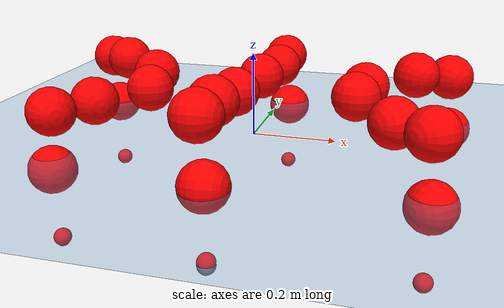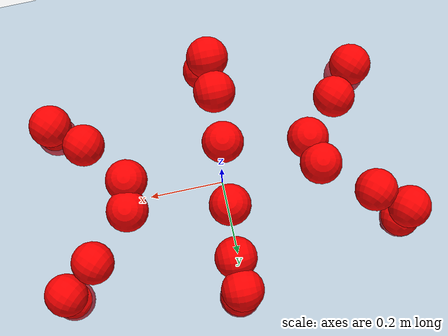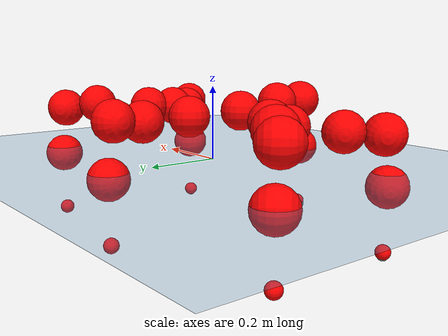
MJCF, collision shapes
<mujoco model="Golem">
  <compiler angle="radian" assetdir="assets" balanceinertia="true" inertiafromgeom="false"/>

  <option timestep="0.005" density="1.2" viscosity="2e-05"/>

  <size nkey="1"/>

  <visual>
    <quality shadowsize="8192"/>
    <map shadowclip="0.5"/>
  </visual>

  <default>
    <default class="/">
      <joint armature="0.01" damping="0.01" frictionloss="0.01"/>
      <geom contype="0" conaffinity="0" group="1" solref="-1000 -80"/>
      <site size="0.01 0.005 0.005" group="5"/>
      <general forcelimited="true" biastype="affine" gainprm="25" biasprm="0 -25 -0.5"/>
      <default class="visual">
        <geom type="mesh" group="2"/>
      </default>
      <default class="collision">
        <geom group="3"/>
      </default>
      <default class="foot">
        <geom size="0.01 0 0" condim="6" group="4" priority="1" solimp="0.015 1 0.01"/>
      </default>
      <default class="reward_collision_sphere">
        <geom group="5" rgba="1 0 0 1"/>
      </default>
    </default>
  </default>

  <asset>
    <texture type="skybox" colorspace="auto" name="//unnamed_texture_0" builtin="gradient" rgb1="0.95 0.95 0.95" rgb2="0.95 0.95 0.95" width="100" height="600"/>
    <texture type="2d" colorspace="auto" name="texplane" builtin="checker" rgb1="0.345 0.575 0.748" rgb2="0.345 0.575 0.748" markrgb="1 1 1" width="512" height="512"/>
    <material name="MatPlane" class="/" texture="texplane" texuniform="true" texrepeat="2 2" specular="0.9"/>
    <mesh name="body" class="/" file="body.stl" scale="0.001 0.001 0.001"/>
    <mesh name="coxa" class="/" file="coxa.stl" scale="0.001 0.001 0.001"/>
    <mesh name="femur" class="/" file="femur.stl" scale="0.001 0.001 0.001"/>
    <mesh name="tibia" class="/" file="tibia.stl" scale="0.001 0.001 0.001"/>
    <mesh name="tarsus" class="/" file="tarsus.stl" scale="0.001 0.001 0.001"/>
  </asset>

  <worldbody>
    <geom name="floor" class="/" size="100 100 0.125" type="plane" group="0" material="MatPlane"/>
    <light name="toplight_shadow" class="/" pos="0 0 5" dir="0.0990148 0.0990148 -0.990148" type="directional" ambient="0.04 0.04 0.04" diffuse="0.55 0.55 0.55" specular="0.12 0.12 0.12"/>
    <light name="toplight_fill" class="/" pos="0 0 5" dir="0.0990148 0.0990148 -0.990148" type="directional" castshadow="false" ambient="0.04 0.04 0.04" diffuse="0.3 0.3 0.3" specular="0.08 0.08 0.08"/>
    <body name="trunk" pos="-0.00451635 -0.000854402 0.014624" quat="0.99999 -0.00199247 -0.00143256 0.00362938">
      <inertial pos="0.000328938 -0.01249 0.0128793" quat="0.999188 0.0340093 0.0215059 0.00201332" mass="7.8022" diaginertia="0.0884183 0.00546047 0.0913655"/>
      <joint name="//unnamed_joint_0" type="free"/>
      <geom name="//unnamed_geom_1" class="/" pos="0 0 0.105075" quat="1 0 0 0" type="mesh" rgba="0.9 0.9 0.9 1" mesh="body"/>
      <site name="imu" class="/" pos="0.251606 0.00224441 0.0979357" size="0.0138348"/>
      <camera name="track" class="/" pos="0 -1.79817 0" quat="0.707107 0.707107 0 0" mode="trackcom"/>
      <camera name="ego_camera" class="/" pos="0.209243 0 0.16418" quat="-0.5 -0.5 0.5 0.5"/>
      <body name="coxa_RR" pos="-0.272197 -0.0811804 0.0982651" quat="0.378134 0.00644442 -0.00127754 -0.925727">
        <inertial pos="0.0157981 0.0103371 -0.00287909" quat="0.997751 -0.0361715 0.0140694 -0.0546584" mass="0.484317" diaginertia="0.107111 0.0057423 0.145433"/>
        <joint name="coxa_joint_RR" class="/" pos="0 0 0" axis="-0.00974666 -0.0158704 -0.999827" range="-2.96415 3.04797" armature="0.0180331" damping="0" frictionloss="0.00452277"/>
        <geom name="//unnamed_geom_2" class="/" type="mesh" rgba="0.2 0.2 0.2 1" mesh="coxa"/>
        <geom name="//unnamed_geom_3" class="reward_collision_sphere" size="0.0553394" pos="-0.0482869 0 0"/>
        <body name="femur_RR" pos="0.0879526 0.00204088 -0.00926446" quat="0.49998 -0.500292 0.499758 0.499969">
          <inertial pos="0.00237788 0.00784202 -0.0145175" quat="0.999998 0.000301649 -0.000181014 -0.00195419" mass="0.512284" diaginertia="0.105376 0.0056961 0.138489"/>
          <joint name="femur_joint_RR" class="/" pos="0 0 0" axis="-0.0389209 -0.0549131 -0.997732" stiffness="0.0265642" range="-3.26606 3.1447" armature="0.0196578" damping="0.0176568" frictionloss="0.0184306"/>
          <geom name="//unnamed_geom_4" class="/" type="mesh" rgba="0.9 0.9 0.9 1" mesh="femur"/>
          <geom name="//unnamed_geom_5" class="reward_collision_sphere" size="0.0553394"/>
          <body name="tibia_RR" pos="0.00536375 -0.101336 0.0105186" quat="3.40508e-05 1 3.16649e-05 3.25117e-05">
            <inertial pos="0.00858784 -0.0136103 0.0146002" quat="0.997679 0.0651363 -0.000689433 0.0198515" mass="0.609572" diaginertia="0.140055 0.00643881 0.124988"/>
            <joint name="tibia_joint_RR" class="/" pos="0 0 0" axis="-0.015964 0.000400989 0.999872" range="-3.1436 3.37073" armature="0.014671" damping="0" frictionloss="0.0113172"/>
            <geom name="//unnamed_geom_6" class="/" type="mesh" rgba="0.2 0.2 0.2 1" mesh="tibia"/>
            <geom name="//unnamed_geom_7" class="reward_collision_sphere" size="0.0553394"/>
            <body name="tarsus_RR" pos="0.13407 0.0140659 -0.00375686" quat="0.999975 -0.00697877 0.000746816 0.000526016">
              <inertial pos="0.0897168 0.0155332 -0.0077282" quat="0.511278 0.479236 0.501311 0.507558" mass="0.547578" diaginertia="0.105462 0.00432209 0.102539"/>
              <joint name="tarsus_joint_RR" class="/" pos="0 0 0" axis="0.000908554 -0.00172624 0.999998" stiffness="0.0262736" range="-3.1251 3.19726" armature="0.0144422" damping="0.0661002" frictionloss="0.0167674"/>
              <geom name="//unnamed_geom_8" class="/" type="mesh" rgba="0.9 0.9 0.9 1" mesh="tarsus"/>
              <geom name="foot_1" class="foot" size="0.0159898" pos="0.180271 0 0" quat="0 -0.707107 0 0.707107"/>
              <geom name="//unnamed_geom_10" class="reward_collision_sphere" size="0.0553394"/>
              <geom name="//unnamed_geom_11" class="reward_collision_sphere" size="0.0207523" pos="0.173028 0 0"/>
              <site name="foot_1" class="foot" pos="0.180271 0 0" quat="0 -0.707107 0 0.707107" size="0.0138348"/>
            </body>
          </body>
        </body>
      </body>
      <body name="coxa_RM" pos="-0.0156184 -0.130433 0.114722" quat="0.70708 -4.05577e-05 -8.93091e-05 -0.707134">
        <inertial pos="-0.000724419 0.0102682 0.0165074" quat="0.999491 0.0304491 0.0087221 0.00377557" mass="0.611185" diaginertia="0.142777 0.00790362 0.123852"/>
        <joint name="coxa_joint_RM" class="/" pos="0 0 0" axis="0.00358607 -0.00736622 -0.999966" range="-3.12218 3.22123" armature="0.0202004" damping="0.00185382" frictionloss="0.00657901"/>
        <geom name="//unnamed_geom_12" class="/" type="mesh" rgba="0.2 0.2 0.2 1" mesh="coxa"/>
        <geom name="//unnamed_geom_13" class="reward_collision_sphere" size="0.0553394" pos="-0.0482869 0 0"/>
        <body name="femur_RM" pos="0.0846496 -0.00699322 0.0168116" quat="0.497022 -0.500377 0.506418 0.496118">
          <inertial pos="0.00524902 0.0103973 -0.00140154" quat="0.997171 -0.0737195 0.0136308 0.00535118" mass="0.482972" diaginertia="0.088418 0.00643558 0.120929"/>
          <joint name="femur_joint_RM" class="/" pos="0 0 0" axis="-0.0333497 0.0095684 -0.999398" range="-2.87905 2.87719" armature="0.00243381" damping="0" frictionloss="0.0150978"/>
          <geom name="//unnamed_geom_14" class="/" type="mesh" rgba="0.9 0.9 0.9 1" mesh="femur"/>
          <geom name="//unnamed_geom_15" class="reward_collision_sphere" size="0.0553394"/>
          <body name="tibia_RM" pos="-0.00034656 -0.0942574 -0.000794561" quat="-9.5551e-05 1 3.8539e-05 -3.92965e-05">
            <inertial pos="0.00704089 -0.00165108 0.0142026" quat="0.99796 -0.0142644 0.000794548 0.0622256" mass="0.725691" diaginertia="0.113906 0.0068641 0.114263"/>
            <joint name="tibia_joint_RM" class="/" pos="0 0 0" axis="-0.0230406 -0.000605166 0.999734" range="-2.88459 3.40194" armature="0.023303" damping="0.0570497" frictionloss="0.0187087"/>
            <geom name="//unnamed_geom_16" class="/" type="mesh" rgba="0.2 0.2 0.2 1" mesh="tibia"/>
            <geom name="//unnamed_geom_17" class="reward_collision_sphere" size="0.0553394"/>
            <body name="tarsus_RM" pos="0.142607 0.0128982 -0.0155479" quat="0.999992 0.000363989 0.00399042 0.00064054">
              <inertial pos="0.105052 -0.00186507 0.00838181" quat="0.49082 0.463215 0.545286 0.497183" mass="0.532456" diaginertia="0.115728 0.00586304 0.128063"/>
              <joint name="tarsus_joint_RM" class="/" pos="0 0 0" axis="-0.0182889 0.0163896 0.999698" stiffness="0.0359993" range="-3.19185 2.80254" armature="0.0126119" damping="0.0839622" frictionloss="0.017097"/>
              <geom name="//unnamed_geom_18" class="/" type="mesh" rgba="0.9 0.9 0.9 1" mesh="tarsus"/>
              <geom name="foot_2" class="foot" size="0.02097" pos="0.180271 0 0" quat="0 -0.707107 0 0.707107"/>
              <geom name="//unnamed_geom_20" class="reward_collision_sphere" size="0.0553394"/>
              <geom name="//unnamed_geom_21" class="reward_collision_sphere" size="0.0207523" pos="0.173028 0 0"/>
              <site name="foot_2" class="foot" pos="0.180271 0 0" quat="0 -0.707107 0 0.707107" size="0.0138348"/>
            </body>
          </body>
        </body>
      </body>
      <body name="coxa_RF" pos="0.284381 -0.0732923 0.109555" quat="0.921389 0.00265694 0.00114405 -0.388632">
        <inertial pos="-0.0143478 0.0140109 0.00475548" quat="0.999645 0.0106424 -0.0100087 -0.0222634" mass="0.556907" diaginertia="0.0898941 0.00608755 0.11605"/>
        <joint name="coxa_joint_RF" class="/" pos="0 0 0" axis="0.00358543 0.0676826 -0.9977" stiffness="0.0181383" range="-3.12377 3.22077" armature="0.0143642" damping="0.0623784" frictionloss="0.0191897"/>
        <geom name="//unnamed_geom_22" class="/" type="mesh" rgba="0.2 0.2 0.2 1" mesh="coxa"/>
        <geom name="//unnamed_geom_23" class="reward_collision_sphere" size="0.0553394" pos="-0.0482869 0 0"/>
        <body name="femur_RF" pos="0.101004 -0.0168733 -0.0130886" quat="0.499614 -0.499433 0.506384 0.494498">
          <inertial pos="-0.00395047 0.00290976 0.00838353" quat="0.998784 0.0451593 0.0105785 0.0166852" mass="0.591542" diaginertia="0.11892 0.00621082 0.136042"/>
          <joint name="femur_joint_RF" class="/" pos="0 0 0" axis="0.00586011 -0.0318746 -0.999475" stiffness="0.0562398" range="-3.32017 2.94598" armature="0.0157297" damping="0" frictionloss="0.0149273"/>
          <geom name="//unnamed_geom_24" class="/" type="mesh" rgba="0.9 0.9 0.9 1" mesh="femur"/>
          <geom name="//unnamed_geom_25" class="reward_collision_sphere" size="0.0553394"/>
          <body name="tibia_RF" pos="-0.00746723 -0.100743 0.00773779" quat="0.00100616 0.999997 -8.42536e-05 0.00212513">
            <inertial pos="0.00217438 0.0124719 -0.000511001" quat="0.999189 0.0326055 0.0161442 -0.0172591" mass="0.571529" diaginertia="0.129966 0.00723126 0.117707"/>
            <joint name="tibia_joint_RF" class="/" pos="0 0 0" axis="0.00465445 -0.00252102 0.999986" stiffness="0.0608215" range="-3.18991 3.39888" armature="0.0140072" damping="0.0935301" frictionloss="0.0135699"/>
            <geom name="//unnamed_geom_26" class="/" type="mesh" rgba="0.2 0.2 0.2 1" mesh="tibia"/>
            <geom name="//unnamed_geom_27" class="reward_collision_sphere" size="0.0553394"/>
            <body name="tarsus_RF" pos="0.147945 0.0140991 -0.00111681" quat="0.999984 0.00387028 -0.00109516 0.00397223">
              <inertial pos="0.0928823 -0.00221348 -0.00575369" quat="0.498886 0.501787 0.50228 0.497028" mass="0.545068" diaginertia="0.0944732 0.00470078 0.113427"/>
              <joint name="tarsus_joint_RF" class="/" pos="0 0 0" axis="0.00904969 0.0213392 0.999731" range="-3.11895 3.23911" armature="0.0106981" damping="0.0266724" frictionloss="0.0164985"/>
              <geom name="//unnamed_geom_28" class="/" type="mesh" rgba="0.9 0.9 0.9 1" mesh="tarsus"/>
              <geom name="foot_3" class="foot" size="0.01457" pos="0.180271 0 0" quat="0 -0.707107 0 0.707107"/>
              <geom name="//unnamed_geom_30" class="reward_collision_sphere" size="0.0553394"/>
              <geom name="//unnamed_geom_31" class="reward_collision_sphere" size="0.0207523" pos="0.173028 0 0"/>
              <site name="foot_3" class="foot" pos="0.180271 0 0" quat="0 -0.707107 0 0.707107" size="0.0138348"/>
            </body>
          </body>
        </body>
      </body>
      <body name="coxa_LR" pos="-0.286415 0.0628179 0.117904" quat="0.382771 -2.43931e-05 -6.77918e-05 0.923843">
        <inertial pos="0.000946437 0.00731558 0.0119925" quat="0.998364 -0.0018664 -0.0122725 0.0558075" mass="0.696088" diaginertia="0.130115 0.00593251 0.149459"/>
        <joint name="coxa_joint_LR" class="/" pos="0 0 0" axis="-0.0171633 -0.0611641 -0.99798" range="-3.12744 3.22081" armature="0.00829985" damping="0" frictionloss="0.00539255"/>
        <geom name="//unnamed_geom_32" class="/" type="mesh" rgba="0.2 0.2 0.2 1" mesh="coxa"/>
        <geom name="//unnamed_geom_33" class="reward_collision_sphere" size="0.0553394" pos="-0.0482869 0 0"/>
        <body name="femur_LR" pos="0.107789 0.0152372 0.00642061" quat="0.500843 -0.503988 0.496428 0.498711">
          <inertial pos="0.00235354 0.00844467 0.0158115" quat="0.998936 0.0191342 0.02598 -0.0329432" mass="0.550307" diaginertia="0.127301 0.00695501 0.142131"/>
          <joint name="femur_joint_LR" class="/" pos="0 0 0" axis="-0.0796751 0.00616105 0.996802" range="-3.13397 3.13185" armature="0.00662536" damping="0" frictionloss="0.0164073"/>
          <geom name="//unnamed_geom_34" class="/" type="mesh" rgba="0.9 0.9 0.9 1" mesh="femur"/>
          <geom name="//unnamed_geom_35" class="reward_collision_sphere" size="0.0553394"/>
          <body name="tibia_LR" pos="0.0122835 -0.0962325 0.0105749" quat="0.00108096 0.999999 -0.00077242 0.000286789">
            <inertial pos="0.00341867 -0.0136226 0.00205846" quat="0.999647 -0.00353033 -0.0199284 0.0172268" mass="0.469023" diaginertia="0.111697 0.00518942 0.0871861"/>
            <joint name="tibia_joint_LR" class="/" pos="0 0 0" axis="-0.0134626 -0.0827304 -0.996481" stiffness="0.0128877" range="-3.39454 3.4773" armature="0.00230693" damping="0.0311805" frictionloss="0.0061687"/>
            <geom name="//unnamed_geom_36" class="/" type="mesh" rgba="0.2 0.2 0.2 1" mesh="tibia"/>
            <geom name="//unnamed_geom_37" class="reward_collision_sphere" size="0.0553394"/>
            <body name="tarsus_LR" pos="0.137155 0.00729 0.00742086" quat="0.999996 0.00190389 0.00200251 0.000898026">
              <inertial pos="0.0808767 0.00413721 0.016942" quat="0.500497 0.503 0.498453 0.498035" mass="0.521682" diaginertia="0.094618 0.00633623 0.115147"/>
              <joint name="tarsus_joint_LR" class="/" pos="0 0 0" axis="0.00225935 0.00455779 -0.999987" stiffness="0.0224161" range="-3.34517 3.33423" armature="0.0224288" damping="0" frictionloss="0.0144311"/>
              <geom name="//unnamed_geom_38" class="/" type="mesh" rgba="0.9 0.9 0.9 1" mesh="tarsus"/>
              <geom name="foot_4" class="foot" size="0.0131395" pos="0.180271 0 0" quat="0.707107 0 -0.707107 0"/>
              <geom name="//unnamed_geom_40" class="reward_collision_sphere" size="0.0553394"/>
              <geom name="//unnamed_geom_41" class="reward_collision_sphere" size="0.0207523" pos="0.173028 0 0"/>
              <site name="foot_4" class="foot" pos="0.180271 0 0" quat="0.707107 0 -0.707107 0" size="0.0138348"/>
            </body>
          </body>
        </body>
      </body>
      <body name="coxa_LM" pos="0.00180818 0.130486 0.109871" quat="0.708048 0.00200576 0.00141676 0.70616">
        <inertial pos="0.000456568 0.0143287 -0.0162211" quat="0.999025 -0.0275663 0.0122784 0.03221" mass="0.492339" diaginertia="0.125468 0.00626266 0.124106"/>
        <joint name="coxa_joint_LM" class="/" pos="0 0 0" axis="0.0124793 0.0625505 -0.997964" stiffness="0.0258221" range="-3.09139 3.28175" armature="0.0252212" damping="0" frictionloss="0.0144478"/>
        <geom name="//unnamed_geom_42" class="/" type="mesh" rgba="0.2 0.2 0.2 1" mesh="coxa"/>
        <geom name="//unnamed_geom_43" class="reward_collision_sphere" size="0.0553394" pos="-0.0482869 0 0"/>
        <body name="femur_LM" pos="0.0878109 -0.0149471 -0.00397604" quat="0.500283 -0.499617 0.500165 0.499935">
          <inertial pos="0.015613 -0.0102741 0.0105913" quat="0.99994 0.00493507 0.00944767 0.0025466" mass="0.563094" diaginertia="0.13845 0.00611324 0.131303"/>
          <joint name="femur_joint_LM" class="/" pos="0 0 0" axis="0.0138789 0.0721155 0.9973" range="-3.15491 3.12695" armature="0.0167195" damping="0.0296107" frictionloss="0.00525246"/>
          <geom name="//unnamed_geom_44" class="/" type="mesh" rgba="0.9 0.9 0.9 1" mesh="femur"/>
          <geom name="//unnamed_geom_45" class="reward_collision_sphere" size="0.0553394"/>
          <body name="tibia_LM" pos="-0.00921559 -0.0838751 -0.00105317" quat="-0.000563456 0.999995 -0.000270915 0.00309322">
            <inertial pos="-0.00509375 -0.00133816 -0.0117065" quat="0.998071 0.0237701 0.0364712 -0.0442616" mass="0.66116" diaginertia="0.105421 0.00610585 0.145468"/>
            <joint name="tibia_joint_LM" class="/" pos="0 0 0" axis="-0.00374529 0.0281221 -0.999597" range="-3.20635 2.86229" armature="0.0113153" damping="0.0383816" frictionloss="0.0080828"/>
            <geom name="//unnamed_geom_46" class="/" type="mesh" rgba="0.2 0.2 0.2 1" mesh="tibia"/>
            <geom name="//unnamed_geom_47" class="reward_collision_sphere" size="0.0553394"/>
            <body name="tarsus_LM" pos="0.147424 0.0140155 0.00864238" quat="1 0.000157107 7.62735e-05 -0.000442409">
              <inertial pos="0.0815847 0.00710742 0.00686331" quat="0.499663 0.499916 0.500107 0.500313" mass="0.52231" diaginertia="0.103237 0.00563712 0.1048"/>
              <joint name="tarsus_joint_LM" class="/" pos="0 0 0" axis="-0.00196987 0.00265148 -0.999995" stiffness="0.0348386" range="-3.09589 3.17311" armature="0.0132379" damping="0.0399426" frictionloss="0.0179777"/>
              <geom name="//unnamed_geom_48" class="/" type="mesh" rgba="0.9 0.9 0.9 1" mesh="tarsus"/>
              <geom name="foot_5" class="foot" size="0.0134975" pos="0.180271 0 0" quat="0.707107 0 -0.707107 0"/>
              <geom name="//unnamed_geom_50" class="reward_collision_sphere" size="0.0553394"/>
              <geom name="//unnamed_geom_51" class="reward_collision_sphere" size="0.0207523" pos="0.173028 0 0"/>
              <site name="foot_5" class="foot" pos="0.180271 0 0" quat="0.707107 0 -0.707107 0" size="0.0138348"/>
            </body>
          </body>
        </body>
      </body>
      <body name="coxa_LF" pos="0.297847 0.0744205 0.112721" quat="0.924082 -0.00158217 0.00113232 0.382189">
        <inertial pos="-0.0120684 0.00195223 -0.00671445" quat="0.997286 -0.0495301 0.0356348 0.0412059" mass="0.515109" diaginertia="0.0850415 0.00543578 0.119282"/>
        <joint name="coxa_joint_LF" class="/" pos="0 0 0" axis="-0.000121445 0.00029867 -1" range="-3.21591 3.416" armature="0.0198511" damping="0.0213243" frictionloss="0.0156199"/>
        <geom name="//unnamed_geom_52" class="/" type="mesh" rgba="0.2 0.2 0.2 1" mesh="coxa"/>
        <geom name="//unnamed_geom_53" class="reward_collision_sphere" size="0.0553394" pos="-0.0482869 0 0"/>
        <body name="femur_LF" pos="0.110097 0.000484812 0.00549125" quat="0.497916 -0.499646 0.499891 0.502537">
          <inertial pos="0.0128759 -0.0116422 0.000591178" quat="0.999225 0.00424514 0.0387178 0.00561067" mass="0.571109" diaginertia="0.125039 0.00567064 0.117864"/>
          <joint name="femur_joint_LF" class="/" pos="0 0 0" axis="-0.0509269 0.0521844 0.997338" stiffness="0.016028" range="-2.85781 3.09224" armature="0.0140317" damping="0.0573277" frictionloss="0.014068"/>
          <geom name="//unnamed_geom_54" class="/" type="mesh" rgba="0.9 0.9 0.9 1" mesh="femur"/>
          <geom name="//unnamed_geom_55" class="reward_collision_sphere" size="0.0553394"/>
          <body name="tibia_LF" pos="0.0151147 -0.104448 -0.0141257" quat="-0.00356419 0.999983 0.000675947 0.00445474">
            <inertial pos="0.0125992 -0.000509916 0.00386526" quat="0.996495 0.0121762 -0.0777751 -0.0283072" mass="0.430542" diaginertia="0.12351 0.00565876 0.130366"/>
            <joint name="tibia_joint_LF" class="/" pos="0 0 0" axis="-0.00559828 -0.0213069 -0.999757" stiffness="0.00159255" range="-3.12301 2.97154" armature="0.013338" damping="0.0679171" frictionloss="0.0168451"/>
            <geom name="//unnamed_geom_56" class="/" type="mesh" rgba="0.2 0.2 0.2 1" mesh="tibia"/>
            <geom name="//unnamed_geom_57" class="reward_collision_sphere" size="0.0553394"/>
            <body name="tarsus_LF" pos="0.140612 0.0126277 -0.00190209" quat="0.999998 -0.000708946 0.00177445 -0.000140859">
              <inertial pos="0.106514 0.00529352 0.010005" quat="0.484995 0.487049 0.513137 0.514056" mass="0.738613" diaginertia="0.130176 0.00693627 0.146155"/>
              <joint name="tarsus_joint_LF" class="/" pos="0 0 0" axis="0.037127 0.00365379 -0.999304" stiffness="0.0489824" range="-3.02292 2.95508" armature="0.0202706" damping="0" frictionloss="0.0128177"/>
              <geom name="//unnamed_geom_58" class="/" type="mesh" rgba="0.9 0.9 0.9 1" mesh="tarsus"/>
              <geom name="foot_6" class="foot" size="0.0080223" pos="0.180271 0 0" quat="0.707107 0 -0.707107 0"/>
              <geom name="//unnamed_geom_60" class="reward_collision_sphere" size="0.0553394"/>
              <geom name="//unnamed_geom_61" class="reward_collision_sphere" size="0.0207523" pos="0.173028 0 0"/>
              <site name="foot_6" class="foot" pos="0.180271 0 0" quat="0.707107 0 -0.707107 0" size="0.0138348"/>
            </body>
          </body>
        </body>
      </body>
    </body>
  </worldbody>

  <contact>
    <pair class="/" geom1="floor" geom2="foot_1" name="//unnamed_contact_0"/>
    <pair class="/" geom1="floor" geom2="foot_2" name="//unnamed_contact_1"/>
    <pair class="/" geom1="floor" geom2="foot_3" name="//unnamed_contact_2"/>
    <pair class="/" geom1="floor" geom2="foot_4" name="//unnamed_contact_3"/>
    <pair class="/" geom1="floor" geom2="foot_5" name="//unnamed_contact_4"/>
    <pair class="/" geom1="floor" geom2="foot_6" name="//unnamed_contact_5"/>
  </contact>

  <actuator>
    <general name="coxa_joint_RR" class="/" joint="coxa_joint_RR" forcerange="-11.015 11.015" gainprm="30.1972" biasprm="0 -30.1972 -0.676175"/>
    <general name="femur_joint_RR" class="/" joint="femur_joint_RR" forcerange="-6.12209 6.12209" gainprm="30.1972" biasprm="0 -30.1972 -0.676175"/>
    <general name="tibia_joint_RR" class="/" joint="tibia_joint_RR" forcerange="-15.2191 15.2191" gainprm="30.1972" biasprm="0 -30.1972 -0.676175"/>
    <general name="tarsus_joint_RR" class="/" joint="tarsus_joint_RR" forcerange="-7.18217 7.18217" gainprm="30.1972" biasprm="0 -30.1972 -0.676175"/>
    <general name="coxa_joint_RM" class="/" joint="coxa_joint_RM" forcerange="-3.71097 3.71097" gainprm="30.1972" biasprm="0 -30.1972 -0.676175"/>
    <general name="femur_joint_RM" class="/" joint="femur_joint_RM" forcerange="-10.8979 10.8979" gainprm="30.1972" biasprm="0 -30.1972 -0.676175"/>
    <general name="tibia_joint_RM" class="/" joint="tibia_joint_RM" forcerange="-7.09378 7.09378" gainprm="30.1972" biasprm="0 -30.1972 -0.676175"/>
    <general name="tarsus_joint_RM" class="/" joint="tarsus_joint_RM" forcerange="-15.2455 15.2455" gainprm="30.1972" biasprm="0 -30.1972 -0.676175"/>
    <general name="coxa_joint_RF" class="/" joint="coxa_joint_RF" forcerange="-5.24592 5.24592" gainprm="30.1972" biasprm="0 -30.1972 -0.676175"/>
    <general name="femur_joint_RF" class="/" joint="femur_joint_RF" forcerange="-10.2772 10.2772" gainprm="30.1972" biasprm="0 -30.1972 -0.676175"/>
    <general name="tibia_joint_RF" class="/" joint="tibia_joint_RF" forcerange="-10.5101 10.5101" gainprm="30.1972" biasprm="0 -30.1972 -0.676175"/>
    <general name="tarsus_joint_RF" class="/" joint="tarsus_joint_RF" forcerange="-9.95352 9.95352" gainprm="30.1972" biasprm="0 -30.1972 -0.676175"/>
    <general name="coxa_joint_LR" class="/" joint="coxa_joint_LR" forcerange="-4.57425 4.57425" gainprm="30.1972" biasprm="0 -30.1972 -0.676175"/>
    <general name="femur_joint_LR" class="/" joint="femur_joint_LR" forcerange="-9.89926 9.89926" gainprm="30.1972" biasprm="0 -30.1972 -0.676175"/>
    <general name="tibia_joint_LR" class="/" joint="tibia_joint_LR" forcerange="-5.62562 5.62562" gainprm="30.1972" biasprm="0 -30.1972 -0.676175"/>
    <general name="tarsus_joint_LR" class="/" joint="tarsus_joint_LR" forcerange="-4.32412 4.32412" gainprm="30.1972" biasprm="0 -30.1972 -0.676175"/>
    <general name="coxa_joint_LM" class="/" joint="coxa_joint_LM" forcerange="-15.1256 15.1256" gainprm="30.1972" biasprm="0 -30.1972 -0.676175"/>
    <general name="femur_joint_LM" class="/" joint="femur_joint_LM" forcerange="-7.5986 7.5986" gainprm="30.1972" biasprm="0 -30.1972 -0.676175"/>
    <general name="tibia_joint_LM" class="/" joint="tibia_joint_LM" forcerange="-4.72836 4.72836" gainprm="30.1972" biasprm="0 -30.1972 -0.676175"/>
    <general name="tarsus_joint_LM" class="/" joint="tarsus_joint_LM" forcerange="-3.84656 3.84656" gainprm="30.1972" biasprm="0 -30.1972 -0.676175"/>
    <general name="coxa_joint_LF" class="/" joint="coxa_joint_LF" forcerange="-14.4841 14.4841" gainprm="30.1972" biasprm="0 -30.1972 -0.676175"/>
    <general name="femur_joint_LF" class="/" joint="femur_joint_LF" forcerange="-14.3759 14.3759" gainprm="30.1972" biasprm="0 -30.1972 -0.676175"/>
    <general name="tibia_joint_LF" class="/" joint="tibia_joint_LF" forcerange="-12.6719 12.6719" gainprm="30.1972" biasprm="0 -30.1972 -0.676175"/>
    <general name="tarsus_joint_LF" class="/" joint="tarsus_joint_LF" forcerange="-13.3938 13.3938" gainprm="30.1972" biasprm="0 -30.1972 -0.676175"/>
  </actuator>

  <sensor>
    <gyro site="imu" name="imu_angular_velocity"/>
    <velocimeter site="imu" name="imu_linear_velocity"/>
    <framelinvel objtype="site" objname="foot_1" name="foot_1_global_linear_velocity"/>
    <framelinvel objtype="site" objname="foot_2" name="foot_2_global_linear_velocity"/>
    <framelinvel objtype="site" objname="foot_3" name="foot_3_global_linear_velocity"/>
    <framelinvel objtype="site" objname="foot_4" name="foot_4_global_linear_velocity"/>
    <framelinvel objtype="site" objname="foot_5" name="foot_5_global_linear_velocity"/>
    <framelinvel objtype="site" objname="foot_6" name="foot_6_global_linear_velocity"/>
  </sensor>

  <keyframe>
    <key name="home" qpos="0 0 0.1457 1 0 0 0 0 0 0 0 0 0 0 0 0 0 0 0 0 0 0 0 0 0 0 0 0 0 0 0"/>
  </keyframe>
</mujoco>
